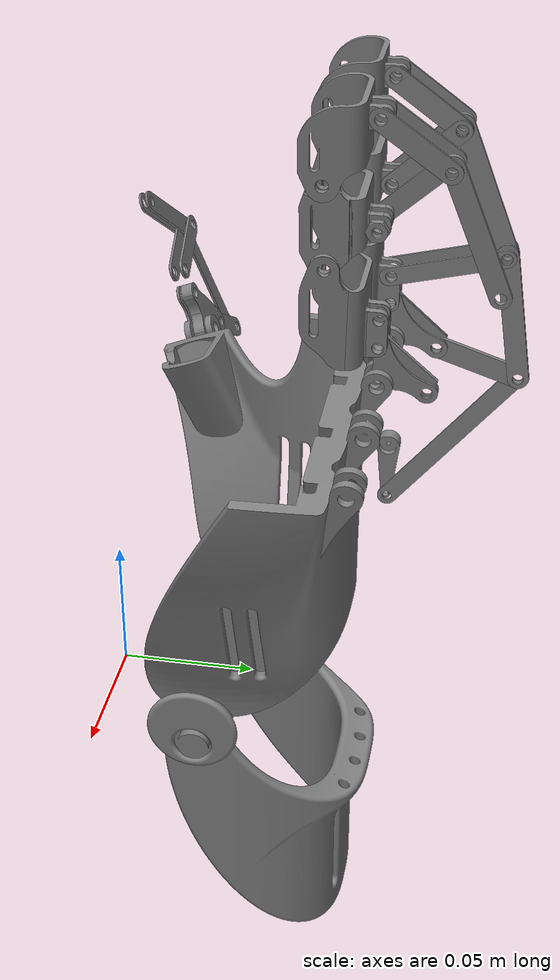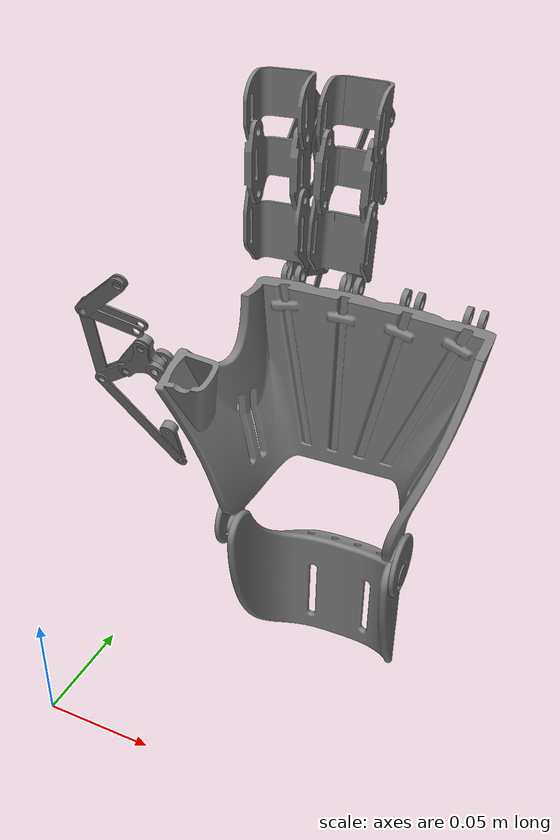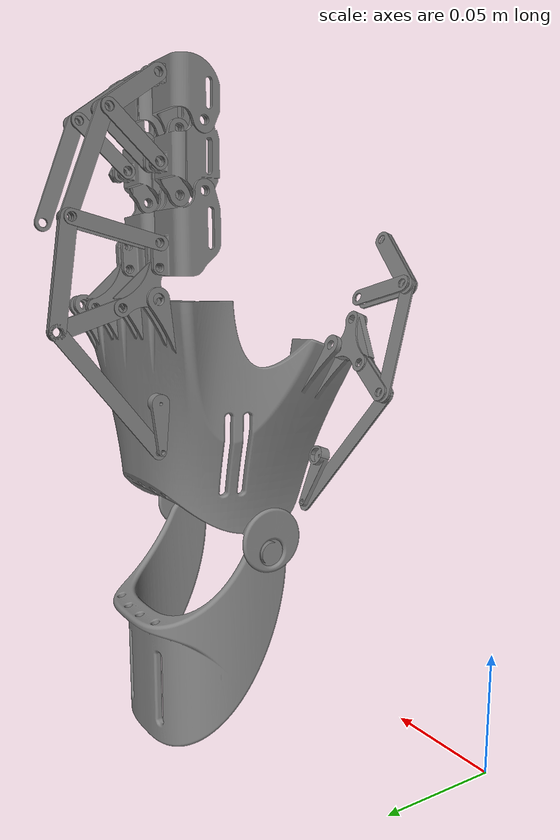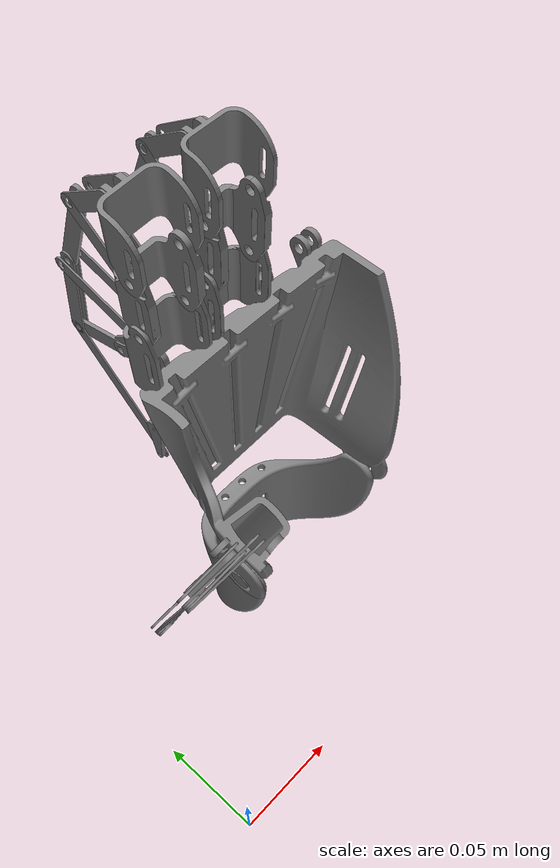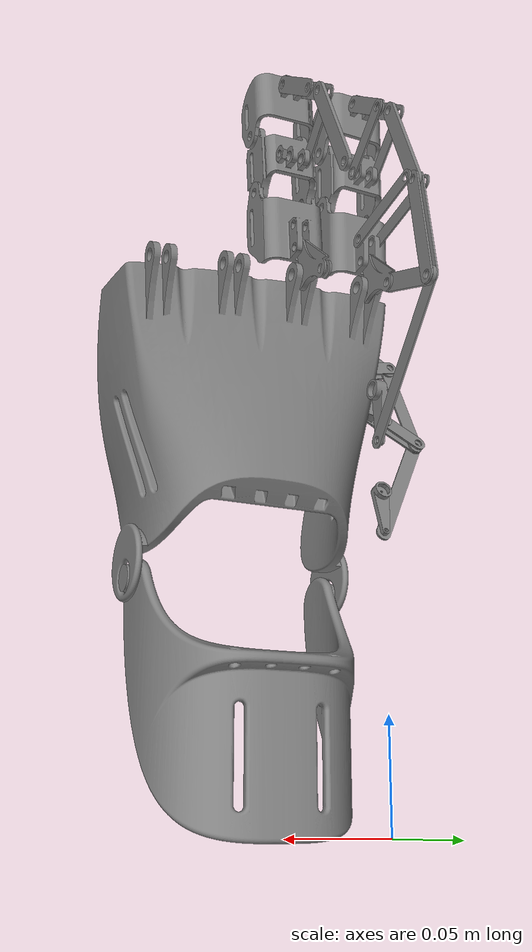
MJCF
<?xml version='1.0' encoding='utf-8'?>
<mujoco model="exoskeleton_hand">
  <compiler angle="radian" />
  <asset>
    <mesh name="BASE" content_type="model/stl" file="../meshes/BASE.STL" scale="0.001 0.001 0.001" />
    <mesh name="WRIST STARP" content_type="model/stl" file="../meshes/WRIST STARP.STL" scale="0.001 0.001 0.001" />
    <mesh name="a1" content_type="model/stl" file="../meshes/fingers/thumb/a1.STL" scale="0.001 0.001 0.001" />
    <mesh name="a2" content_type="model/stl" file="../meshes/fingers/thumb/a2.STL" scale="0.001 0.001 0.001" />
    <mesh name="b1" content_type="model/stl" file="../meshes/fingers/thumb/b1.STL" scale="0.001 0.001 0.001" />
    <mesh name="c1.1" content_type="model/stl" file="../meshes/fingers/thumb/c1.1.STL" scale="0.001 0.001 0.001" />
    <mesh name="c1.2" content_type="model/stl" file="../meshes/fingers/thumb/c1.2.STL" scale="0.001 0.001 0.001" />
    <mesh name="a3.1" content_type="model/stl" file="../meshes/fingers/thumb/a3.1.STL" scale="0.001 0.001 0.001" />
    <mesh name="a3.2" content_type="model/stl" file="../meshes/fingers/thumb/a3.2.STL" scale="0.001 0.001 0.001" />
    <mesh name="a4.1" content_type="model/stl" file="../meshes/fingers/thumb/a4.1.STL" scale="0.001 0.001 0.001" />
    <mesh name="a4.2" content_type="model/stl" file="../meshes/fingers/thumb/a4.2.STL" scale="0.001 0.001 0.001" />
    <mesh name="b2.1" content_type="model/stl" file="../meshes/fingers/thumb/b2.1.STL" scale="0.001 0.001 0.001" />
    <mesh name="b2.2" content_type="model/stl" file="../meshes/fingers/thumb/b2.2.STL" scale="0.001 0.001 0.001" />
    <mesh name="c2" content_type="model/stl" file="../meshes/fingers/thumb/c2.STL" scale="0.001 0.001 0.001" />
    <mesh name="c3" content_type="model/stl" file="../meshes/fingers/thumb/c3.STL" scale="0.001 0.001 0.001" />
    <mesh name="INDEX 1" content_type="model/stl" file="../meshes/fingers/Index/INDEX 1.STL" scale="0.001 0.001 0.001" />
    <mesh name="INDEX 2" content_type="model/stl" file="../meshes/fingers/Index/INDEX 2.STL" scale="0.001 0.001 0.001" />
    <mesh name="finger 1.1" content_type="model/stl" file="../meshes/fingers/Index/finger 1.1.STL" scale="0.001 0.001 0.001" />
    <mesh name="finger 1.2" content_type="model/stl" file="../meshes/fingers/Index/finger 1.2.STL" scale="0.001 0.001 0.001" />
    <mesh name="support 1" content_type="model/stl" file="../meshes/fingers/Index/support 1.STL" scale="0.001 0.001 0.001" />
    <mesh name="INDEX 3.1" content_type="model/stl" file="../meshes/fingers/Index/INDEX 3.1.STL" scale="0.001 0.001 0.001" />
    <mesh name="INDEX 3.2" content_type="model/stl" file="../meshes/fingers/Index/INDEX 3.2.STL" scale="0.001 0.001 0.001" />
    <mesh name="finger 2" content_type="model/stl" file="../meshes/fingers/Index/finger 2.STL" scale="0.001 0.001 0.001" />
    <mesh name="support 2.1" content_type="model/stl" file="../meshes/fingers/Index/support 2.1.STL" scale="0.001 0.001 0.001" />
    <mesh name="support 2.2" content_type="model/stl" file="../meshes/fingers/Index/support 2.2.STL" scale="0.001 0.001 0.001" />
    <mesh name="INDEX 4" content_type="model/stl" file="../meshes/fingers/Index/INDEX 4.STL" scale="0.001 0.001 0.001" />
    <mesh name="INDEX 5.1" content_type="model/stl" file="../meshes/fingers/Index/INDEX 5.1.STL" scale="0.001 0.001 0.001" />
    <mesh name="INDEX 5.2" content_type="model/stl" file="../meshes/fingers/Index/INDEX 5.2.STL" scale="0.001 0.001 0.001" />
    <mesh name="finger 3" content_type="model/stl" file="../meshes/fingers/Index/finger 3.STL" scale="0.001 0.001 0.001" />
    <mesh name="finger 4" content_type="model/stl" file="../meshes/fingers/Index/finger 4.STL" scale="0.001 0.001 0.001" />
    <mesh name="support 3.1" content_type="model/stl" file="../meshes/fingers/Index/support 3.1.STL" scale="0.001 0.001 0.001" />
    <mesh name="support 3.2" content_type="model/stl" file="../meshes/fingers/Index/support 3.2.STL" scale="0.001 0.001 0.001" />
    <mesh name="c1" content_type="model/stl" file="../meshes/fingers/finger 2/c1.STL" scale="0.001 0.001 0.001" />
    <mesh name="a4" content_type="model/stl" file="../meshes/fingers/finger 2/a4.STL" scale="0.001 0.001 0.001" />
    <mesh name="a5.1" content_type="model/stl" file="../meshes/fingers/finger 2/a5.1.STL" scale="0.001 0.001 0.001" />
    <mesh name="a5.2" content_type="model/stl" file="../meshes/fingers/finger 2/a5.2.STL" scale="0.001 0.001 0.001" />
    <mesh name="b3.1" content_type="model/stl" file="../meshes/fingers/finger 2/b3.1.STL" scale="0.001 0.001 0.001" />
    <mesh name="b3.2" content_type="model/stl" file="../meshes/fingers/finger 2/b3.2.STL" scale="0.001 0.001 0.001" />
    <mesh name="c4" content_type="model/stl" file="../meshes/fingers/finger 2/c4.STL" scale="0.001 0.001 0.001" />
  </asset>
  <worldbody>
    <geom pos="0 0 0" quat="1 0 0 0" type="mesh" mesh="BASE" />
    <geom pos="0 0 0" quat="1 0 0 0" type="mesh" mesh="WRIST STARP" />
    <body name="thumb_phalanx1">
      <inertial pos="0 0 0" mass="0.05" diaginertia="0.0001 0.0001 0.0001" />
      <joint name="wrist_to_thumb" range="-1.2 1.6" actuatorfrcrange="-10 10" axis="1 0 0" />
      <geom pos="-0.001 -0.000939 -0.000938" quat="1 0 0 0" type="mesh" mesh="a1" />
      <body name="thumb_phalanx2" pos="0.037021 0.059016 0.1335">
        <inertial pos="0 0 0" mass="0.05" diaginertia="0.0001 0.0001 0.0001" />
        <joint name="thumb_joint1" range="-1.2 1.6" actuatorfrcrange="-10 10" axis="1 0 0" />
        <geom pos="-0.038021 -0.059955 -0.134439" quat="1 0 0 0" type="mesh" mesh="a2" />
        <geom pos="-0.038021 -0.059955 -0.134439" quat="1 0 0 0" type="mesh" mesh="b1" />
        <body name="thumb_phalanx3" pos="-0.002397 -0.014554 0.0332">
          <inertial pos="0 0 0" mass="0.05" diaginertia="0.0001 0.0001 0.0001" />
          <joint name="thumb_joint2" range="-1.2 1.6" actuatorfrcrange="-10 10" axis="1 0 0" />
          <geom pos="-0.035624 -0.045401 -0.167639" quat="1 0 0 0" type="mesh" mesh="c1.1" />
          <geom pos="-0.035624 -0.045401 -0.167639" quat="1 0 0 0" type="mesh" mesh="c1.2" />
          <body name="thumb_phalanx4" pos="0.013073 -0.005187 0.0151">
            <inertial pos="0 0 0" mass="0.05" diaginertia="0.0001 0.0001 0.0001" />
            <joint name="thumb_joint3" range="-1.2 1.6" actuatorfrcrange="-10 10" axis="1 0 0" />
            <geom pos="-0.048697 -0.040213 -0.182739" quat="1 0 0 0" type="mesh" mesh="a3.1" />
            <geom pos="-0.048697 -0.040213 -0.182739" quat="1 0 0 0" type="mesh" mesh="a3.2" />
            <geom pos="-0.048694 -0.040213 -0.182736" quat="1 0 0 0" type="mesh" mesh="a4.1" />
            <geom pos="-0.048694 -0.040214 -0.182736" quat="1 0 0 0" type="mesh" mesh="a4.2" />
            <geom pos="-0.048697 -0.040213 -0.182739" quat="1 0 0 0" type="mesh" mesh="b2.1" />
            <geom pos="-0.048697 -0.040213 -0.182739" quat="1 0 0 0" type="mesh" mesh="b2.2" />
            <geom pos="-0.048697 -0.040213 -0.182739" quat="1 0 0 0" type="mesh" mesh="c2" />
            <geom pos="-0.048697 -0.040213 -0.182797" quat="1 0 0 0" type="mesh" mesh="c3" />
          </body>
        </body>
      </body>
    </body>
    <body name="index_phalanx1">
      <inertial pos="0 0 0" mass="0.05" diaginertia="0.0001 0.0001 0.0001" />
      <joint name="wrist_to_index" range="-1.2 1.6" actuatorfrcrange="-10 10" axis="1 0 0" />
      <geom pos="-0.001 -0.001 -0.001" type="mesh" mesh="INDEX 1" />
      <body name="index_phalanx2" pos="0.068208 0.10758 0.1526">
        <inertial pos="0 0 0" mass="0.05" diaginertia="0.0001 0.0001 0.0001" />
        <joint name="index_joint1" range="-1.2 1.6" actuatorfrcrange="-10 10" axis="1 0 0" />
        <geom pos="-0.069208 -0.108577 -0.153598" quat="1 0 0 0" type="mesh" mesh="INDEX 2" />
        <geom pos="-0.069208 -0.10858 -0.1536" quat="1 0 0 0" type="mesh" mesh="finger 1.1" />
        <geom pos="-0.069208 -0.10858 -0.1536" quat="1 0 0 0" type="mesh" mesh="finger 1.2" />
        <geom pos="-0.069208 -0.108578 -0.153599" quat="1 0 0 0" type="mesh" mesh="support 1" />
        <body name="index_phalanx3" pos="0.001351 -0.008674 0.0478">
          <inertial pos="0 0 0" mass="0.05" diaginertia="0.0001 0.0001 0.0001" />
          <joint name="index_joint2" range="-1.2 1.6" actuatorfrcrange="-10 10" axis="1 0 0" />
          <geom pos="-0.070559 -0.099905 -0.2014" type="mesh" mesh="INDEX 3.1" />
          <geom pos="-0.070559 -0.099905 -0.2014" type="mesh" mesh="INDEX 3.2" />
          <geom pos="-0.070559 -0.099905 -0.2014" quat="1 0 0 0" type="mesh" mesh="finger 2" />
          <geom pos="-0.070559 -0.099905 -0.2014" quat="1 0 0 0" type="mesh" mesh="support 2.1" />
          <geom pos="-0.070559 -0.099905 -0.2014" quat="1 0 0 0" type="mesh" mesh="support 2.2" />
          <body name="index_phalanx4" pos="-3.3e-05 -0.004008 0.027">
            <inertial pos="0 0 0" mass="0.05" diaginertia="0.0001 0.0001 0.0001" />
            <joint name="index_joint3" range="-1.2 1.6" actuatorfrcrange="-10 10" axis="1 0 0" />
            <geom pos="-0.070526 -0.095897 -0.2284" type="mesh" mesh="INDEX 4" />
            <geom pos="-0.070526 -0.095897 -0.2284" quat="1 0 0 0" type="mesh" mesh="INDEX 5.1" />
            <geom pos="-0.070526 -0.095897 -0.2284" quat="1 0 0 0" type="mesh" mesh="INDEX 5.2" />
            <geom pos="-0.070526 -0.095897 -0.2284" quat="1 0 0 0" type="mesh" mesh="finger 3" />
            <geom pos="-0.070526 -0.095897 -0.2284" quat="1 0 0 0" type="mesh" mesh="finger 4" />
            <geom pos="-0.070526 -0.095898 -0.2284" quat="1 0 0 0" type="mesh" mesh="support 3.1" />
            <geom pos="-0.070526 -0.095898 -0.2284" quat="1 0 0 0" type="mesh" mesh="support 3.2" />
          </body>
        </body>
      </body>
    </body>
    <body name="finger2_phalanx1">
      <inertial pos="0 0 0" mass="0.05" diaginertia="0.0001 0.0001 0.0001" />
      <joint name="wrist_to_finger2" range="-1.2 1.6" actuatorfrcrange="-10 10" axis="1 0 0" />
      <geom pos="-0.000999 -0.001 -0.000999" quat="1 0 0 0" type="mesh" mesh="a1" />
      <body name="finger2_phalanx2" pos="0.090891 0.122512 0.1158">
        <inertial pos="0 0 0" mass="0.05" diaginertia="0.0001 0.0001 0.0001" />
        <joint name="finger2_joint1" range="-1.2 1.6" actuatorfrcrange="-10 10" axis="1 0 0" />
        <geom pos="-0.09189 -0.123512 -0.116798" quat="1 0 0 0" type="mesh" mesh="a2" />
        <geom pos="-0.09189 -0.123511 -0.116798" quat="1 0 0 0" type="mesh" mesh="b1" />
        <geom pos="-0.09189 -0.123512 -0.116799" quat="1 0 0 0" type="mesh" mesh="c1" />
        <body name="finger2_phalanx3" pos="0.005034 -0.02388 0.0842">
          <inertial pos="0 0 0" mass="0.05" diaginertia="0.0001 0.0001 0.0001" />
          <joint name="finger2_joint2" range="-1.2 1.6" actuatorfrcrange="-10 10" axis="1 0 0" />
          <geom pos="-0.096924 -0.099633 -0.200999" quat="1 0 0 0" type="mesh" mesh="a3.1" />
          <geom pos="-0.096924 -0.099633 -0.200999" quat="1 0 0 0" type="mesh" mesh="a3.2" />
          <geom pos="-0.096924 -0.099632 -0.200999" quat="1 0 0 0" type="mesh" mesh="b2.1" />
          <geom pos="-0.096924 -0.099632 -0.200999" quat="1 0 0 0" type="mesh" mesh="b2.2" />
          <geom pos="-0.096924 -0.099632 -0.200999" quat="1 0 0 0" type="mesh" mesh="c2" />
          <body name="finger2_phalanx4" pos="0.001069 -0.003735 0.0274">
            <inertial pos="0 0 0" mass="0.05" diaginertia="0.0001 0.0001 0.0001" />
            <joint name="finger2_joint3" range="-1.2 1.6" actuatorfrcrange="-10 10" axis="1 0 0" />
            <geom pos="-0.097993 -0.095897 -0.228399" type="mesh" mesh="a4" />
            <geom pos="-0.097993 -0.095897 -0.228399" quat="1 0 0 0" type="mesh" mesh="a5.1" />
            <geom pos="-0.097993 -0.095897 -0.228399" quat="1 0 0 0" type="mesh" mesh="a5.2" />
            <geom pos="-0.097993 -0.095898 -0.228399" quat="1 0 0 0" type="mesh" mesh="b3.1" />
            <geom pos="-0.097993 -0.095898 -0.228399" quat="1 0 0 0" type="mesh" mesh="b3.2" />
            <geom pos="-0.097993 -0.095898 -0.228399" quat="1 0 0 0" type="mesh" mesh="c3" />
            <geom pos="-0.097993 -0.095898 -0.2284" quat="1 0 0 0" type="mesh" mesh="c4" />
          </body>
        </body>
      </body>
    </body>
    <body name="finger3_phalanx1">
      <inertial pos="0 0 0" mass="0.05" diaginertia="0.0001 0.0001 0.0001" />
      <joint name="wrist_to_finger3" range="-1.2 1.6" actuatorfrcrange="-10 10" axis="1 0 0" />
      <geom pos="-0.000996 -0.001 -0.000996" quat="1 0 0 0" type="mesh" mesh="a1" />
      <body name="finger3_phalanx2" pos="0.124455 0.122475 0.1271">
        <inertial pos="0 0 0" mass="0.05" diaginertia="0.0001 0.0001 0.0001" />
        <joint name="finger3_joint1" range="-1.2 1.6" actuatorfrcrange="-10 10" axis="1 0 0" />
        <geom pos="-0.125451 -0.123474 -0.128096" quat="1 0 0 0" type="mesh" mesh="a2" />
        <geom pos="-0.125451 -0.123473 -0.128095" quat="1 0 0 0" type="mesh" mesh="b1" />
        <geom pos="-0.125451 -0.123475 -0.128096" quat="1 0 0 0" type="mesh" mesh="c1.1" />
        <geom pos="-0.125451 -0.123475 -0.128096" quat="1 0 0 0" type="mesh" mesh="c1.2" />
        <body name="finger3_phalanx3" pos="-0.002235 -0.023966 0.0713">
          <inertial pos="0 0 0" mass="0.05" diaginertia="0.0001 0.0001 0.0001" />
          <joint name="finger3_joint2" range="-1.2 1.6" actuatorfrcrange="-10 10" axis="1 0 0" />
          <geom pos="-0.123216 -0.099509 -0.199396" quat="1 0 0 0" type="mesh" mesh="a3.1" />
          <geom pos="-0.123216 -0.099509 -0.199396" quat="1 0 0 0" type="mesh" mesh="a3.2" />
          <geom pos="-0.123216 -0.099509 -0.199396" quat="1 0 0 0" type="mesh" mesh="b2.1" />
          <geom pos="-0.123216 -0.099509 -0.199396" quat="1 0 0 0" type="mesh" mesh="b2.2" />
          <geom pos="-0.123216 -0.099509 -0.199396" quat="1 0 0 0" type="mesh" mesh="c2" />
          <body name="finger3_phalanx4" pos="0.001929 -0.001287 0.0277">
            <inertial pos="0 0 0" mass="0.05" diaginertia="0.0001 0.0001 0.0001" />
            <joint name="finger3_joint3" range="-1.2 1.6" actuatorfrcrange="-10 10" axis="1 0 0" />
            <geom pos="-0.125145 -0.098222 -0.227096" type="mesh" mesh="a4" />
            <geom pos="-0.125145 -0.098221 -0.227096" quat="1 0 0 0" type="mesh" mesh="a5.1" />
            <geom pos="-0.125145 -0.098221 -0.227096" quat="1 0 0 0" type="mesh" mesh="a5.2" />
            <geom pos="-0.125145 -0.098222 -0.227096" quat="1 0 0 0" type="mesh" mesh="b3.1" />
            <geom pos="-0.125145 -0.098222 -0.227096" quat="1 0 0 0" type="mesh" mesh="b3.2" />
            <geom pos="-0.125145 -0.098222 -0.227097" quat="1 0 0 0" type="mesh" mesh="c3" />
            <geom pos="-0.125145 -0.098222 -0.227098" quat="1 0 0 0" type="mesh" mesh="c4" />
          </body>
        </body>
      </body>
    </body>
    <body name="finger4_phalanx1">
      <inertial pos="0 0 0" mass="0.05" diaginertia="0.0001 0.0001 0.0001" />
      <joint name="wrist_to_finger4" range="-1.2 1.6" actuatorfrcrange="-10 10" axis="1 0 0" />
      <geom pos="-0.000992 -0.001 -0.000991" quat="1 0 0 0" type="mesh" mesh="a1" />
      <body name="finger4_phalanx2" pos="0.143578 0.107127 0.1481">
        <inertial pos="0 0 0" mass="0.05" diaginertia="0.0001 0.0001 0.0001" />
        <joint name="finger4_joint1" range="-1.2 1.6" actuatorfrcrange="-10 10" axis="1 0 0" />
        <geom pos="-0.14457 -0.108124 -0.149089" quat="1 0 0 0" type="mesh" mesh="a2" />
        <geom pos="-0.14457 -0.108125 -0.14909" quat="1 0 0 0" type="mesh" mesh="b1" />
        <geom pos="-0.14457 -0.108126 -0.149092" quat="1 0 0 0" type="mesh" mesh="c1.1" />
        <geom pos="-0.14457 -0.108126 -0.149092" quat="1 0 0 0" type="mesh" mesh="c1.2" />
        <body name="finger4_phalanx3" pos="0.004901 -0.008803 0.0476">
          <inertial pos="0 0 0" mass="0.05" diaginertia="0.0001 0.0001 0.0001" />
          <joint name="finger4_joint2" range="-1.2 1.6" actuatorfrcrange="-10 10" axis="1 0 0" />
          <geom pos="-0.149471 -0.099324 -0.196692" quat="1 0 0 0" type="mesh" mesh="a3.1" />
          <geom pos="-0.149471 -0.099324 -0.196692" quat="1 0 0 0" type="mesh" mesh="a3.2" />
          <geom pos="-0.149471 -0.099323 -0.196691" quat="1 0 0 0" type="mesh" mesh="b2.1" />
          <geom pos="-0.149471 -0.099323 -0.196691" quat="1 0 0 0" type="mesh" mesh="b2.2" />
          <geom pos="-0.149471 -0.099324 -0.196692" quat="1 0 0 0" type="mesh" mesh="c2" />
          <body name="finger4_phalanx4" pos="0.003065 -0.000679 0.028">
            <inertial pos="0 0 0" mass="0.05" diaginertia="0.0001 0.0001 0.0001" />
            <joint name="finger4_joint3" range="-1.2 1.6" actuatorfrcrange="-10 10" axis="1 0 0" />
            <geom pos="-0.152536 -0.098644 -0.224691" type="mesh" mesh="a4" />
            <geom pos="-0.152536 -0.098644 -0.224692" quat="1 0 0 0" type="mesh" mesh="a5.1" />
            <geom pos="-0.152536 -0.098644 -0.224692" quat="1 0 0 0" type="mesh" mesh="a5.2" />
            <geom pos="-0.152536 -0.098644 -0.224692" quat="1 0 0 0" type="mesh" mesh="b3.1" />
            <geom pos="-0.152536 -0.098644 -0.224692" quat="1 0 0 0" type="mesh" mesh="b3.2" />
            <geom pos="-0.152536 -0.098644 -0.224698" quat="1 0 0 0" type="mesh" mesh="c3" />
            <geom pos="-0.152536 -0.098644 -0.224695" quat="1 0 0 0" type="mesh" mesh="c4" />
          </body>
        </body>
      </body>
    </body>
  </worldbody>
  <equality>
    <connect name="thumb_rocker" body1="world" body2="thumb_phalanx4" anchor="0.0469 0.0293 0.2095" solref="0.005 1" solimp="0.9 0.95 0.001" />
    <connect name="index_rocker" body1="world" body2="index_phalanx4" anchor="0.0700 0.0977 0.2629" solref="0.005 1" solimp="0.9 0.95 0.001" />
    <connect name="finger2_rocker" body1="world" body2="finger2_phalanx4" anchor="0.0990 0.0977 0.2623" solref="0.005 1" solimp="0.9 0.95 0.001" />
    <connect name="finger3_rocker" body1="world" body2="finger3_phalanx4" anchor="0.1280 0.0977 0.2605" solref="0.005 1" solimp="0.9 0.95 0.001" />
    <connect name="finger4_rocker" body1="world" body2="finger4_phalanx4" anchor="0.1569 0.0977 0.2574" solref="0.005 1" solimp="0.9 0.95 0.001" />
  </equality>
  <actuator>
    <position name="thumb_drive" joint="wrist_to_thumb" kp="50" />
    <position name="index_drive" joint="wrist_to_index" kp="50" />
    <position name="finger2_drive" joint="wrist_to_finger2" kp="50" />
    <position name="finger3_drive" joint="wrist_to_finger3" kp="50" />
    <position name="finger4_drive" joint="wrist_to_finger4" kp="50" />
  </actuator>
</mujoco>
